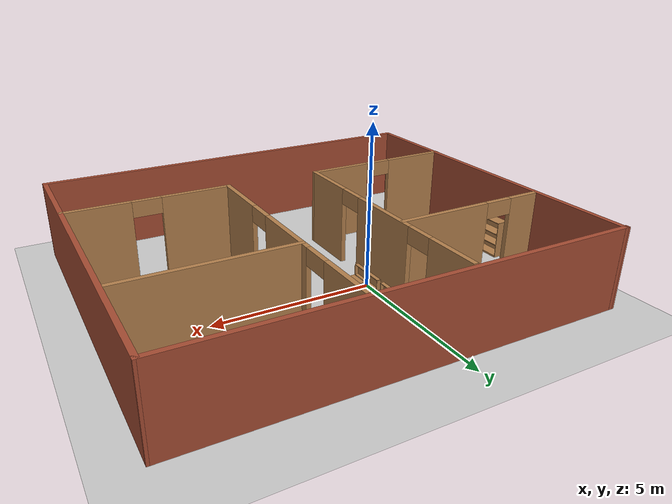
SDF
<sdf version="1.7">
 <world name="default">
  <plugin name="gazebo_ros_state" filename="libgazebo_ros_model_state.so">
   <ros><namespace>/</namespace></ros>
  </plugin>
  <light name="sun" type="directional">
   <pose>0 0 10 0 -0 0</pose>
   <diffuse>0.8 0.8 0.8 1</diffuse>
   <specular>0.2 0.2 0.2 1</specular>
   <attenuation>
    <range>1000</range>
    <constant>0.9</constant>
    <linear>0.01</linear>
    <quadratic>0.001</quadratic>
   </attenuation>
   <direction>-0.5 0.1 -0.9</direction>
   <spot><inner_angle>0</inner_angle><outer_angle>0</outer_angle><falloff>0</falloff></spot>
  </light>
  <model name="ground_plane">
   <static>1</static>
   <link name="link">
    <collision name="collision">
     <geometry><plane><normal>0 0 1</normal><size>100 100</size></plane></geometry>
     <surface><friction><ode><mu>100</mu><mu2>50</mu2></ode></friction></surface>
    </collision>
    <visual name="visual">
     <cast_shadows>0</cast_shadows>
     <geometry><plane><normal>0 0 1</normal><size>100 100</size></plane></geometry>
     <material>
      <script><uri>file://media/materials/scripts/gazebo.material</uri><name>Gazebo/Grey</name></script>
     </material>
    </visual>
   </link>
  </model>
  <gravity>0 0 -9.8</gravity>
  <magnetic_field>6e-06 2.3e-05 -4.2e-05</magnetic_field>
  <atmosphere type="adiabatic"/>
  <physics type="ode">
   <max_step_size>0.001</max_step_size>
   <real_time_factor>1</real_time_factor>
   <real_time_update_rate>1000</real_time_update_rate>
  </physics>
  <scene><ambient>0.4 0.4 0.4 1</ambient><background>0.7 0.7 0.7 1</background><shadows>1</shadows></scene>
  <audio><device>default</device></audio>
  <spherical_coordinates>
   <surface_model>EARTH_WGS84</surface_model>
   <latitude_deg>0</latitude_deg>
   <longitude_deg>0</longitude_deg>
   <elevation>0</elevation>
   <heading_deg>0</heading_deg>
  </spherical_coordinates>
  <model name="my_floor">
   <pose>1.28227 -1.19933 0 0 -0 0</pose>
   <link name="Wall_0">
    <collision name="Wall_0_Collision">
     <geometry><box><size>11.3221 0.15 2.5</size></box></geometry>
     <pose>0 0 1.25 0 -0 0</pose>
    </collision>
    <visual name="Wall_0_Visual">
     <pose>0 0 1.25 0 -0 0</pose>
     <geometry><box><size>11.3221 0.15 2.5</size></box></geometry>
     <material>
      <script><uri>file://media/materials/scripts/gazebo.material</uri><name>Gazebo/Bricks</name></script>
      <ambient>1 1 1 1</ambient>
     </material>
     <meta><layer>0</layer></meta>
    </visual>
    <pose>-6.55746 -6.5e-05 0 0 -0 -1.5708</pose>
   </link>
   <link name="Wall_1">
    <collision name="Wall_1_Collision">
     <geometry><box><size>13.3116 0.15 2.5</size></box></geometry>
     <pose>0 0 1.25 0 -0 0</pose>
    </collision>
    <visual name="Wall_1_Visual">
     <pose>0 0 1.25 0 -0 0</pose>
     <geometry><box><size>13.3116 0.15 2.5</size></box></geometry>
     <material>
      <script><uri>file://media/materials/scripts/gazebo.material</uri><name>Gazebo/Bricks</name></script>
      <ambient>1 1 1 1</ambient>
     </material>
     <meta><layer>0</layer></meta>
    </visual>
    <pose>0.023196 -5.53985 0 0 -0 0.00703</pose>
   </link>
   <link name="Wall_10">
    <pose>-1.53812 1.41526 0 0 -0 1.5708</pose>
    <visual name="Wall_10_Visual_0">
     <pose>-3.0194 0 1.25 0 -0 0</pose>
     <geometry><box><size>1.96119 0.15 2.5</size></box></geometry>
     <material>
      <script><uri>file://media/materials/scripts/gazebo.material</uri><name>Gazebo/Wood</name></script>
      <ambient>1 1 1 1</ambient>
     </material>
     <meta><layer>0</layer></meta>
    </visual>
    <collision name="Wall_10_Collision_0">
     <geometry><box><size>1.96119 0.15 2.5</size></box></geometry>
     <pose>-3.0194 0 1.25 0 -0 0</pose>
    </collision>
    <visual name="Wall_10_Visual_1">
     <pose>0.122856 0 1.25 0 -0 0</pose>
     <geometry><box><size>2.52333 0.15 2.5</size></box></geometry>
     <material>
      <script><uri>file://media/materials/scripts/gazebo.material</uri><name>Gazebo/Wood</name></script>
      <ambient>1 1 1 1</ambient>
     </material>
     <meta><layer>0</layer></meta>
    </visual>
    <collision name="Wall_10_Collision_1">
     <geometry><box><size>2.52333 0.15 2.5</size></box></geometry>
     <pose>0.122856 0 1.25 0 -0 0</pose>
    </collision>
    <visual name="Wall_10_Visual_2">
     <pose>3.14226 0 1.25 0 -0 0</pose>
     <geometry><box><size>1.71548 0.15 2.5</size></box></geometry>
     <material>
      <script><uri>file://media/materials/scripts/gazebo.material</uri><name>Gazebo/Wood</name></script>
      <ambient>1 1 1 1</ambient>
     </material>
     <meta><layer>0</layer></meta>
    </visual>
    <collision name="Wall_10_Collision_2">
     <geometry><box><size>1.71548 0.15 2.5</size></box></geometry>
     <pose>3.14226 0 1.25 0 -0 0</pose>
    </collision>
    <visual name="Wall_10_Visual_3">
     <pose>-1.58881 0 2.25 0 -0 0</pose>
     <geometry><box><size>0.9 0.15 0.5</size></box></geometry>
     <material>
      <script><uri>file://media/materials/scripts/gazebo.material</uri><name>Gazebo/Wood</name></script>
      <ambient>1 1 1 1</ambient>
     </material>
     <meta><layer>0</layer></meta>
    </visual>
    <collision name="Wall_10_Collision_3">
     <geometry><box><size>0.9 0.15 0.5</size></box></geometry>
     <pose>-1.58881 0 2.25 0 -0 0</pose>
    </collision>
    <visual name="Wall_10_Visual_4">
     <pose>1.83452 0 2.25 0 -0 0</pose>
     <geometry><box><size>0.9 0.15 0.5</size></box></geometry>
     <material>
      <script><uri>file://media/materials/scripts/gazebo.material</uri><name>Gazebo/Wood</name></script>
      <ambient>1 1 1 1</ambient>
     </material>
     <meta><layer>0</layer></meta>
    </visual>
    <collision name="Wall_10_Collision_4">
     <geometry><box><size>0.9 0.15 0.5</size></box></geometry>
     <pose>1.83452 0 2.25 0 -0 0</pose>
    </collision>
   </link>
   <link name="Wall_12">
    <pose>-4.05936 2.42865 0 0 -0 -3.13692</pose>
    <visual name="Wall_12_Visual_0">
     <pose>-1.02575 0 1.25 0 -0 0</pose>
     <geometry><box><size>3.04851 0.15 2.5</size></box></geometry>
     <material>
      <script><uri>file://media/materials/scripts/gazebo.material</uri><name>Gazebo/Wood</name></script>
      <ambient>1 1 1 1</ambient>
     </material>
     <meta><layer>0</layer></meta>
    </visual>
    <collision name="Wall_12_Collision_0">
     <geometry><box><size>3.04851 0.15 2.5</size></box></geometry>
     <pose>-1.02575 0 1.25 0 -0 0</pose>
    </collision>
    <visual name="Wall_12_Visual_1">
     <pose>1.97425 0 1.25 0 -0 0</pose>
     <geometry><box><size>1.15149 0.15 2.5</size></box></geometry>
     <material>
      <script><uri>file://media/materials/scripts/gazebo.material</uri><name>Gazebo/Wood</name></script>
      <ambient>1 1 1 1</ambient>
     </material>
     <meta><layer>0</layer></meta>
    </visual>
    <collision name="Wall_12_Collision_1">
     <geometry><box><size>1.15149 0.15 2.5</size></box></geometry>
     <pose>1.97425 0 1.25 0 -0 0</pose>
    </collision>
    <visual name="Wall_12_Visual_2">
     <pose>0.948507 0 2.25 0 -0 0</pose>
     <geometry><box><size>0.9 0.15 0.5</size></box></geometry>
     <material>
      <script><uri>file://media/materials/scripts/gazebo.material</uri><name>Gazebo/Wood</name></script>
      <ambient>1 1 1 1</ambient>
     </material>
     <meta><layer>0</layer></meta>
    </visual>
    <collision name="Wall_12_Collision_2">
     <geometry><box><size>0.9 0.15 0.5</size></box></geometry>
     <pose>0.948507 0 2.25 0 -0 0</pose>
    </collision>
   </link>
   <link name="Wall_16">
    <pose>4.04792 -2.59069 0 0 -0 3.13698</pose>
    <visual name="Wall_16_Visual_0">
     <pose>-1.56947 0 1.25 0 -0 0</pose>
     <geometry><box><size>2.03045 0.15 2.5</size></box></geometry>
     <material>
      <script><uri>file://media/materials/scripts/gazebo.material</uri><name>Gazebo/Wood</name></script>
      <ambient>1 1 1 1</ambient>
     </material>
     <meta><layer>0</layer></meta>
    </visual>
    <collision name="Wall_16_Collision_0">
     <geometry><box><size>2.03045 0.15 2.5</size></box></geometry>
     <pose>-1.56947 0 1.25 0 -0 0</pose>
    </collision>
    <visual name="Wall_16_Visual_1">
     <pose>1.46523 0 1.25 0 -0 0</pose>
     <geometry><box><size>2.23894 0.15 2.5</size></box></geometry>
     <material>
      <script><uri>file://media/materials/scripts/gazebo.material</uri><name>Gazebo/Wood</name></script>
      <ambient>1 1 1 1</ambient>
     </material>
     <meta><layer>0</layer></meta>
    </visual>
    <collision name="Wall_16_Collision_1">
     <geometry><box><size>2.23894 0.15 2.5</size></box></geometry>
     <pose>1.46523 0 1.25 0 -0 0</pose>
    </collision>
    <visual name="Wall_16_Visual_2">
     <pose>-0.104246 0 2.25 0 -0 0</pose>
     <geometry><box><size>0.9 0.15 0.5</size></box></geometry>
     <material>
      <script><uri>file://media/materials/scripts/gazebo.material</uri><name>Gazebo/Wood</name></script>
      <ambient>1 1 1 1</ambient>
     </material>
     <meta><layer>0</layer></meta>
    </visual>
    <collision name="Wall_16_Collision_2">
     <geometry><box><size>0.9 0.15 0.5</size></box></geometry>
     <pose>-0.104246 0 2.25 0 -0 0</pose>
    </collision>
   </link>
   <link name="Wall_19">
    <pose>1.51512 1.38777 0 0 -0 -1.56496</pose>
    <visual name="Wall_19_Visual_0">
     <pose>-3.13119 0 1.25 0 -0 0</pose>
     <geometry><box><size>1.82156 0.15 2.5</size></box></geometry>
     <material>
      <script><uri>file://media/materials/scripts/gazebo.material</uri><name>Gazebo/Wood</name></script>
      <ambient>1 1 1 1</ambient>
     </material>
     <meta><layer>0</layer></meta>
    </visual>
    <collision name="Wall_19_Collision_0">
     <geometry><box><size>1.82156 0.15 2.5</size></box></geometry>
     <pose>-3.13119 0 1.25 0 -0 0</pose>
    </collision>
    <visual name="Wall_19_Visual_1">
     <pose>-0.11673 0 1.25 0 -0 0</pose>
     <geometry><box><size>2.40735 0.15 2.5</size></box></geometry>
     <material>
      <script><uri>file://media/materials/scripts/gazebo.material</uri><name>Gazebo/Wood</name></script>
      <ambient>1 1 1 1</ambient>
     </material>
     <meta><layer>0</layer></meta>
    </visual>
    <collision name="Wall_19_Collision_1">
     <geometry><box><size>2.40735 0.15 2.5</size></box></geometry>
     <pose>-0.11673 0 1.25 0 -0 0</pose>
    </collision>
    <visual name="Wall_19_Visual_2">
     <pose>3.01446 0 1.25 0 -0 0</pose>
     <geometry><box><size>2.05502 0.15 2.5</size></box></geometry>
     <material>
      <script><uri>file://media/materials/scripts/gazebo.material</uri><name>Gazebo/Wood</name></script>
      <ambient>1 1 1 1</ambient>
     </material>
     <meta><layer>0</layer></meta>
    </visual>
    <collision name="Wall_19_Collision_2">
     <geometry><box><size>2.05502 0.15 2.5</size></box></geometry>
     <pose>3.01446 0 1.25 0 -0 0</pose>
    </collision>
    <visual name="Wall_19_Visual_3">
     <pose>-1.77041 0 2.25 0 -0 0</pose>
     <geometry><box><size>0.9 0.15 0.5</size></box></geometry>
     <material>
      <script><uri>file://media/materials/scripts/gazebo.material</uri><name>Gazebo/Wood</name></script>
      <ambient>1 1 1 1</ambient>
     </material>
     <meta><layer>0</layer></meta>
    </visual>
    <collision name="Wall_19_Collision_3">
     <geometry><box><size>0.9 0.15 0.5</size></box></geometry>
     <pose>-1.77041 0 2.25 0 -0 0</pose>
    </collision>
    <visual name="Wall_19_Visual_4">
     <pose>1.53695 0 2.25 0 -0 0</pose>
     <geometry><box><size>0.9 0.15 0.5</size></box></geometry>
     <material>
      <script><uri>file://media/materials/scripts/gazebo.material</uri><name>Gazebo/Wood</name></script>
      <ambient>1 1 1 1</ambient>
     </material>
     <meta><layer>0</layer></meta>
    </visual>
    <collision name="Wall_19_Collision_4">
     <geometry><box><size>0.9 0.15 0.5</size></box></geometry>
     <pose>1.53695 0 2.25 0 -0 0</pose>
    </collision>
   </link>
   <link name="Wall_2">
    <collision name="Wall_2_Collision">
     <geometry><box><size>11.1141 0.15 2.5</size></box></geometry>
     <pose>0 0 1.25 0 -0 0</pose>
    </collision>
    <visual name="Wall_2_Visual">
     <pose>0 0 1.25 0 -0 0</pose>
     <geometry><box><size>11.1141 0.15 2.5</size></box></geometry>
     <material>
      <script><uri>file://media/materials/scripts/gazebo.material</uri><name>Gazebo/Bricks</name></script>
      <ambient>1 1 1 1</ambient>
     </material>
     <meta><layer>0</layer></meta>
    </visual>
    <pose>6.58072 -0.011631 0 0 -0 1.57502</pose>
   </link>
   <link name="Wall_22">
    <collision name="Wall_22_Collision">
     <geometry><box><size>5.19253 0.15 2.5</size></box></geometry>
     <pose>0 0 1.25 0 -0 0</pose>
    </collision>
    <visual name="Wall_22_Visual">
     <pose>0 0 1.25 0 -0 0</pose>
     <geometry><box><size>5.19253 0.15 2.5</size></box></geometry>
     <material>
      <script><uri>file://media/materials/scripts/gazebo.material</uri><name>Gazebo/Wood</name></script>
      <ambient>1 1 1 1</ambient>
     </material>
     <meta><layer>0</layer></meta>
    </visual>
    <pose>4.03636 2.38239 0 0 -0 -0.004587</pose>
   </link>
   <link name="Wall_3">
    <collision name="Wall_3_Collision">
     <geometry><box><size>13.3118 0.15 2.5</size></box></geometry>
     <pose>0 0 1.25 0 -0 0</pose>
    </collision>
    <visual name="Wall_3_Visual">
     <pose>0 0 1.25 0 -0 0</pose>
     <geometry><box><size>13.3118 0.15 2.5</size></box></geometry>
     <material>
      <script><uri>file://media/materials/scripts/gazebo.material</uri><name>Gazebo/Bricks</name></script>
      <ambient>1 1 1 1</ambient>
     </material>
     <meta><layer>0</layer></meta>
    </visual>
    <pose>-0.023065 5.52815 0 0 -0 3.13281</pose>
   </link>
   <link name="Wall_9">
    <pose>-4.05936 -2.53287 0 0 -0 0.009174</pose>
    <visual name="Wall_9_Visual_0">
     <pose>-1.50041 0 1.25 0 -0 0</pose>
     <geometry><box><size>2.1925 0.15 2.5</size></box></geometry>
     <material>
      <script><uri>file://media/materials/scripts/gazebo.material</uri><name>Gazebo/Wood</name></script>
      <ambient>1 1 1 1</ambient>
     </material>
     <meta><layer>0</layer></meta>
    </visual>
    <collision name="Wall_9_Collision_0">
     <geometry><box><size>2.1925 0.15 2.5</size></box></geometry>
     <pose>-1.50041 0 1.25 0 -0 0</pose>
    </collision>
    <visual name="Wall_9_Visual_1">
     <pose>1.54625 0 1.25 0 -0 0</pose>
     <geometry><box><size>2.10083 0.15 2.5</size></box></geometry>
     <material>
      <script><uri>file://media/materials/scripts/gazebo.material</uri><name>Gazebo/Wood</name></script>
      <ambient>1 1 1 1</ambient>
     </material>
     <meta><layer>0</layer></meta>
    </visual>
    <collision name="Wall_9_Collision_1">
     <geometry><box><size>2.10083 0.15 2.5</size></box></geometry>
     <pose>1.54625 0 1.25 0 -0 0</pose>
    </collision>
    <visual name="Wall_9_Visual_2">
     <pose>0.045835 0 2.25 0 -0 0</pose>
     <geometry><box><size>0.9 0.15 0.5</size></box></geometry>
     <material>
      <script><uri>file://media/materials/scripts/gazebo.material</uri><name>Gazebo/Wood</name></script>
      <ambient>1 1 1 1</ambient>
     </material>
     <meta><layer>0</layer></meta>
    </visual>
    <collision name="Wall_9_Collision_2">
     <geometry><box><size>0.9 0.15 0.5</size></box></geometry>
     <pose>0.045835 0 2.25 0 -0 0</pose>
    </collision>
   </link>
   <static>1</static>
  </model>
  <model name="bookshelf">
   <static>1</static>
   <link name="link">
    <inertial><mass>1</mass></inertial>
    <collision name="back">
     <pose>0 0.005 0.6 0 -0 0</pose>
     <geometry><box><size>0.9 0.01 1.2</size></box></geometry>
    </collision>
    <visual name="visual1">
     <pose>0 0.005 0.6 0 -0 0</pose>
     <geometry><box><size>0.9 0.01 1.2</size></box></geometry>
     <material>
      <script><uri>file://media/materials/scripts/gazebo.material</uri><name>Gazebo/Wood</name></script>
     </material>
    </visual>
    <collision name="left_side">
     <pose>0.45 -0.195 0.6 0 -0 0</pose>
     <geometry><box><size>0.02 0.4 1.2</size></box></geometry>
    </collision>
    <visual name="visual2">
     <pose>0.45 -0.195 0.6 0 -0 0</pose>
     <geometry><box><size>0.02 0.4 1.2</size></box></geometry>
     <material>
      <script><uri>file://media/materials/scripts/gazebo.material</uri><name>Gazebo/Wood</name></script>
     </material>
    </visual>
    <collision name="right_side">
     <pose>-0.45 -0.195 0.6 0 -0 0</pose>
     <geometry><box><size>0.02 0.4 1.2</size></box></geometry>
    </collision>
    <visual name="visual3">
     <pose>-0.45 -0.195 0.6 0 -0 0</pose>
     <geometry><box><size>0.02 0.4 1.2</size></box></geometry>
     <material>
      <script><uri>file://media/materials/scripts/gazebo.material</uri><name>Gazebo/Wood</name></script>
     </material>
    </visual>
    <collision name="bottom">
     <pose>0 -0.195 0.03 0 -0 0</pose>
     <geometry><box><size>0.88 0.4 0.06</size></box></geometry>
    </collision>
    <visual name="visual4">
     <pose>0 -0.195 0.03 0 -0 0</pose>
     <geometry><box><size>0.88 0.4 0.06</size></box></geometry>
     <material>
      <script><uri>file://media/materials/scripts/gazebo.material</uri><name>Gazebo/Wood</name></script>
     </material>
    </visual>
    <collision name="top">
     <pose>0 -0.195 1.19 0 -0 0</pose>
     <geometry><box><size>0.88 0.4 0.02</size></box></geometry>
    </collision>
    <visual name="visual5">
     <pose>0 -0.195 1.19 0 -0 0</pose>
     <geometry><box><size>0.88 0.4 0.02</size></box></geometry>
     <material>
      <script><uri>file://media/materials/scripts/gazebo.material</uri><name>Gazebo/Wood</name></script>
     </material>
    </visual>
    <collision name="low_shelf">
     <pose>0 -0.195 0.43 0 -0 0</pose>
     <geometry><box><size>0.88 0.4 0.02</size></box></geometry>
    </collision>
    <visual name="visual6">
     <pose>0 -0.195 0.43 0 -0 0</pose>
     <geometry><box><size>0.88 0.4 0.02</size></box></geometry>
     <material>
      <script><uri>file://media/materials/scripts/gazebo.material</uri><name>Gazebo/Wood</name></script>
     </material>
    </visual>
    <collision name="high_shelf">
     <pose>0 -0.195 0.8 0 -0 0</pose>
     <geometry><box><size>0.88 0.4 0.02</size></box></geometry>
    </collision>
    <visual name="visual7">
     <pose>0 -0.195 0.8 0 -0 0</pose>
     <geometry><box><size>0.88 0.4 0.02</size></box></geometry>
     <material>
      <script><uri>file://media/materials/scripts/gazebo.material</uri><name>Gazebo/Wood</name></script>
     </material>
    </visual>
   </link>
   <pose>-2.5611 1.1369 0 0 -0 0</pose>
  </model>
  <model name="bookshelf_0">
   <static>1</static>
   <link name="link">
    <inertial><mass>1</mass></inertial>
    <collision name="back">
     <pose>0 0.005 0.6 0 -0 0</pose>
     <geometry><box><size>0.9 0.01 1.2</size></box></geometry>
    </collision>
    <visual name="visual1">
     <pose>0 0.005 0.6 0 -0 0</pose>
     <geometry><box><size>0.9 0.01 1.2</size></box></geometry>
     <material>
      <script><uri>file://media/materials/scripts/gazebo.material</uri><name>Gazebo/Wood</name></script>
     </material>
    </visual>
    <collision name="left_side">
     <pose>0.45 -0.195 0.6 0 -0 0</pose>
     <geometry><box><size>0.02 0.4 1.2</size></box></geometry>
    </collision>
    <visual name="visual2">
     <pose>0.45 -0.195 0.6 0 -0 0</pose>
     <geometry><box><size>0.02 0.4 1.2</size></box></geometry>
     <material>
      <script><uri>file://media/materials/scripts/gazebo.material</uri><name>Gazebo/Wood</name></script>
     </material>
    </visual>
    <collision name="right_side">
     <pose>-0.45 -0.195 0.6 0 -0 0</pose>
     <geometry><box><size>0.02 0.4 1.2</size></box></geometry>
    </collision>
    <visual name="visual3">
     <pose>-0.45 -0.195 0.6 0 -0 0</pose>
     <geometry><box><size>0.02 0.4 1.2</size></box></geometry>
     <material>
      <script><uri>file://media/materials/scripts/gazebo.material</uri><name>Gazebo/Wood</name></script>
     </material>
    </visual>
    <collision name="bottom">
     <pose>0 -0.195 0.03 0 -0 0</pose>
     <geometry><box><size>0.88 0.4 0.06</size></box></geometry>
    </collision>
    <visual name="visual4">
     <pose>0 -0.195 0.03 0 -0 0</pose>
     <geometry><box><size>0.88 0.4 0.06</size></box></geometry>
     <material>
      <script><uri>file://media/materials/scripts/gazebo.material</uri><name>Gazebo/Wood</name></script>
     </material>
    </visual>
    <collision name="top">
     <pose>0 -0.195 1.19 0 -0 0</pose>
     <geometry><box><size>0.88 0.4 0.02</size></box></geometry>
    </collision>
    <visual name="visual5">
     <pose>0 -0.195 1.19 0 -0 0</pose>
     <geometry><box><size>0.88 0.4 0.02</size></box></geometry>
     <material>
      <script><uri>file://media/materials/scripts/gazebo.material</uri><name>Gazebo/Wood</name></script>
     </material>
    </visual>
    <collision name="low_shelf">
     <pose>0 -0.195 0.43 0 -0 0</pose>
     <geometry><box><size>0.88 0.4 0.02</size></box></geometry>
    </collision>
    <visual name="visual6">
     <pose>0 -0.195 0.43 0 -0 0</pose>
     <geometry><box><size>0.88 0.4 0.02</size></box></geometry>
     <material>
      <script><uri>file://media/materials/scripts/gazebo.material</uri><name>Gazebo/Wood</name></script>
     </material>
    </visual>
    <collision name="high_shelf">
     <pose>0 -0.195 0.8 0 -0 0</pose>
     <geometry><box><size>0.88 0.4 0.02</size></box></geometry>
    </collision>
    <visual name="visual7">
     <pose>0 -0.195 0.8 0 -0 0</pose>
     <geometry><box><size>0.88 0.4 0.02</size></box></geometry>
     <material>
      <script><uri>file://media/materials/scripts/gazebo.material</uri><name>Gazebo/Wood</name></script>
     </material>
    </visual>
   </link>
   <pose>-5.17905 -0.142839 0 0 -0 1.58158</pose>
  </model>
  <model name="bookshelf_1">
   <static>1</static>
   <link name="link">
    <inertial><mass>1</mass></inertial>
    <collision name="back">
     <pose>0 0.005 0.6 0 -0 0</pose>
     <geometry><box><size>0.9 0.01 1.2</size></box></geometry>
    </collision>
    <visual name="visual1">
     <pose>0 0.005 0.6 0 -0 0</pose>
     <geometry><box><size>0.9 0.01 1.2</size></box></geometry>
     <material>
      <script><uri>file://media/materials/scripts/gazebo.material</uri><name>Gazebo/Wood</name></script>
     </material>
    </visual>
    <collision name="left_side">
     <pose>0.45 -0.195 0.6 0 -0 0</pose>
     <geometry><box><size>0.02 0.4 1.2</size></box></geometry>
    </collision>
    <visual name="visual2">
     <pose>0.45 -0.195 0.6 0 -0 0</pose>
     <geometry><box><size>0.02 0.4 1.2</size></box></geometry>
     <material>
      <script><uri>file://media/materials/scripts/gazebo.material</uri><name>Gazebo/Wood</name></script>
     </material>
    </visual>
    <collision name="right_side">
     <pose>-0.45 -0.195 0.6 0 -0 0</pose>
     <geometry><box><size>0.02 0.4 1.2</size></box></geometry>
    </collision>
    <visual name="visual3">
     <pose>-0.45 -0.195 0.6 0 -0 0</pose>
     <geometry><box><size>0.02 0.4 1.2</size></box></geometry>
     <material>
      <script><uri>file://media/materials/scripts/gazebo.material</uri><name>Gazebo/Wood</name></script>
     </material>
    </visual>
    <collision name="bottom">
     <pose>0 -0.195 0.03 0 -0 0</pose>
     <geometry><box><size>0.88 0.4 0.06</size></box></geometry>
    </collision>
    <visual name="visual4">
     <pose>0 -0.195 0.03 0 -0 0</pose>
     <geometry><box><size>0.88 0.4 0.06</size></box></geometry>
     <material>
      <script><uri>file://media/materials/scripts/gazebo.material</uri><name>Gazebo/Wood</name></script>
     </material>
    </visual>
    <collision name="top">
     <pose>0 -0.195 1.19 0 -0 0</pose>
     <geometry><box><size>0.88 0.4 0.02</size></box></geometry>
    </collision>
    <visual name="visual5">
     <pose>0 -0.195 1.19 0 -0 0</pose>
     <geometry><box><size>0.88 0.4 0.02</size></box></geometry>
     <material>
      <script><uri>file://media/materials/scripts/gazebo.material</uri><name>Gazebo/Wood</name></script>
     </material>
    </visual>
    <collision name="low_shelf">
     <pose>0 -0.195 0.43 0 -0 0</pose>
     <geometry><box><size>0.88 0.4 0.02</size></box></geometry>
    </collision>
    <visual name="visual6">
     <pose>0 -0.195 0.43 0 -0 0</pose>
     <geometry><box><size>0.88 0.4 0.02</size></box></geometry>
     <material>
      <script><uri>file://media/materials/scripts/gazebo.material</uri><name>Gazebo/Wood</name></script>
     </material>
    </visual>
    <collision name="high_shelf">
     <pose>0 -0.195 0.8 0 -0 0</pose>
     <geometry><box><size>0.88 0.4 0.02</size></box></geometry>
    </collision>
    <visual name="visual7">
     <pose>0 -0.195 0.8 0 -0 0</pose>
     <geometry><box><size>0.88 0.4 0.02</size></box></geometry>
     <material>
      <script><uri>file://media/materials/scripts/gazebo.material</uri><name>Gazebo/Wood</name></script>
     </material>
    </visual>
   </link>
   <pose>3.81136 1.09262 0 0 -0 0</pose>
  </model>
  <model name="wooden_case">
   <link name="base">
    <pose>0 0 0.024 0 -0 0</pose>
    <inertial>
     <pose>-0.022184 0 0.171592 0 -0 0</pose>
     <mass>3.96264</mass>
     <inertia>
      <ixx>0.213536</ixx>
      <ixy>0</ixy>
      <ixz>0.000779377</ixz>
      <iyy>0.0708943</iyy>
      <iyz>0</iyz>
      <izz>0.154604</izz>
     </inertia>
    </inertial>
    <collision name="collision_back">
     <pose>-0.053975 0 0.1778 0 -0 0</pose>
     <geometry><box><size>0.01905 0.5461 0.3175</size></box></geometry>
     <surface>
      <contact>
       <poissons_ratio>0.347</poissons_ratio>
       <elastic_modulus>8.8e+09</elastic_modulus>
       <ode><kp>100000</kp><kd>100</kd><max_vel>100</max_vel><min_depth>0.001</min_depth></ode>
      </contact>
      <friction>
       <torsional>
        <coefficient>1</coefficient>
        <use_patch_radius>0</use_patch_radius>
        <surface_radius>0.01</surface_radius>
       </torsional>
      </friction>
     </surface>
    </collision>
    <visual name="visual_back">
     <pose>-0.053975 0 0.1778 0 -0 0</pose>
     <geometry><box><size>0.01905 0.5461 0.3175</size></box></geometry>
     <material>
      <script><uri>file://media/materials/scripts/gazebo.material</uri><name>Gazebo/Wood</name></script>
     </material>
    </visual>
    <collision name="collision_bottom">
     <pose>0 0 0.009525 0 -0 0</pose>
     <geometry><box><size>0.127 0.5842 0.01905</size></box></geometry>
     <surface>
      <contact>
       <poissons_ratio>0.347</poissons_ratio>
       <elastic_modulus>8.8e+09</elastic_modulus>
       <ode><kp>100000</kp><kd>100</kd><max_vel>100</max_vel><min_depth>0.001</min_depth></ode>
      </contact>
      <friction>
       <torsional>
        <coefficient>1</coefficient>
        <use_patch_radius>0</use_patch_radius>
        <surface_radius>0.01</surface_radius>
       </torsional>
      </friction>
     </surface>
    </collision>
    <visual name="visual_bottom">
     <pose>0 0 0.009525 0 -0 0</pose>
     <geometry><box><size>0.127 0.5842 0.01905</size></box></geometry>
     <material>
      <script><uri>file://media/materials/scripts/gazebo.material</uri><name>Gazebo/Wood</name></script>
     </material>
    </visual>
    <collision name="collision_top">
     <pose>0 0 0.346075 0 -0 0</pose>
     <geometry><box><size>0.127 0.5842 0.01905</size></box></geometry>
     <surface>
      <contact>
       <poissons_ratio>0.347</poissons_ratio>
       <elastic_modulus>8.8e+09</elastic_modulus>
       <ode><kp>100000</kp><kd>100</kd><max_vel>100</max_vel><min_depth>0.001</min_depth></ode>
      </contact>
      <friction>
       <torsional>
        <coefficient>1</coefficient>
        <use_patch_radius>0</use_patch_radius>
        <surface_radius>0.01</surface_radius>
       </torsional>
      </friction>
     </surface>
    </collision>
    <visual name="visual_top">
     <pose>0 0 0.346075 0 -0 0</pose>
     <geometry><box><size>0.127 0.5842 0.01905</size></box></geometry>
     <material>
      <script><uri>file://media/materials/scripts/gazebo.material</uri><name>Gazebo/Wood</name></script>
     </material>
    </visual>
    <collision name="collision_left">
     <pose>0 -0.282575 0.1778 0 -0 0</pose>
     <geometry><box><size>0.127 0.01905 0.3175</size></box></geometry>
     <surface>
      <contact>
       <poissons_ratio>0.347</poissons_ratio>
       <elastic_modulus>8.8e+09</elastic_modulus>
       <ode><kp>100000</kp><kd>100</kd><max_vel>100</max_vel><min_depth>0.001</min_depth></ode>
      </contact>
      <friction>
       <torsional>
        <coefficient>1</coefficient>
        <use_patch_radius>0</use_patch_radius>
        <surface_radius>0.01</surface_radius>
       </torsional>
      </friction>
     </surface>
    </collision>
    <visual name="visual_left">
     <pose>0 -0.282575 0.1778 0 -0 0</pose>
     <geometry><box><size>0.127 0.01905 0.3175</size></box></geometry>
     <material>
      <script><uri>file://media/materials/scripts/gazebo.material</uri><name>Gazebo/Wood</name></script>
     </material>
    </visual>
    <collision name="collision_right">
     <pose>0 0.282575 0.1778 0 -0 0</pose>
     <geometry><box><size>0.127 0.01905 0.3175</size></box></geometry>
     <surface>
      <contact>
       <poissons_ratio>0.347</poissons_ratio>
       <elastic_modulus>8.8e+09</elastic_modulus>
       <ode><kp>100000</kp><kd>100</kd><max_vel>100</max_vel><min_depth>0.001</min_depth></ode>
      </contact>
      <friction>
       <torsional>
        <coefficient>1</coefficient>
        <use_patch_radius>0</use_patch_radius>
        <surface_radius>0.01</surface_radius>
       </torsional>
      </friction>
     </surface>
    </collision>
    <visual name="visual_right">
     <pose>0 0.282575 0.1778 0 -0 0</pose>
     <geometry><box><size>0.127 0.01905 0.3175</size></box></geometry>
     <material>
      <script><uri>file://media/materials/scripts/gazebo.material</uri><name>Gazebo/Wood</name></script>
     </material>
    </visual>
    <collision name="collision_block_left">
     <pose>0.0095 -0.2151 -0.012 0 -0 0</pose>
     <geometry><box><size>0.108 0.05 0.024</size></box></geometry>
     <surface>
      <contact>
       <poissons_ratio>0.347</poissons_ratio>
       <elastic_modulus>8.8e+09</elastic_modulus>
       <ode><kp>100000</kp><kd>100</kd><max_vel>100</max_vel><min_depth>0.001</min_depth></ode>
      </contact>
      <friction>
       <torsional>
        <coefficient>1</coefficient>
        <use_patch_radius>0</use_patch_radius>
        <surface_radius>0.01</surface_radius>
       </torsional>
      </friction>
     </surface>
    </collision>
    <visual name="visual_block_left">
     <pose>0.0095 -0.2151 -0.012 0 -0 0</pose>
     <geometry><box><size>0.108 0.05 0.024</size></box></geometry>
     <material>
      <script><uri>file://media/materials/scripts/gazebo.material</uri><name>Gazebo/Wood</name></script>
     </material>
    </visual>
    <collision name="collision_block_right">
     <pose>0.0095 0.2151 -0.012 0 -0 0</pose>
     <geometry><box><size>0.108 0.05 0.024</size></box></geometry>
     <surface>
      <contact>
       <poissons_ratio>0.347</poissons_ratio>
       <elastic_modulus>8.8e+09</elastic_modulus>
       <ode><kp>100000</kp><kd>100</kd><max_vel>100</max_vel><min_depth>0.001</min_depth></ode>
      </contact>
      <friction>
       <torsional>
        <coefficient>1</coefficient>
        <use_patch_radius>0</use_patch_radius>
        <surface_radius>0.01</surface_radius>
       </torsional>
      </friction>
     </surface>
    </collision>
    <visual name="visual_block_right">
     <pose>0.0095 0.2151 -0.012 0 -0 0</pose>
     <geometry><box><size>0.108 0.05 0.024</size></box></geometry>
     <material>
      <script><uri>file://media/materials/scripts/gazebo.material</uri><name>Gazebo/Wood</name></script>
     </material>
    </visual>
   </link>
   <link name="lid">
    <pose>0.243775 0 0.009525 0 -0 0</pose>
    <inertial>
     <mass>1.97874</mass>
     <inertia>
      <ixx>0.0563367</ixx>
      <ixy>0</ixy>
      <ixz>0</ixz>
      <iyy>0.020911</iyy>
      <iyz>0</iyz>
      <izz>0.0771281</izz>
     </inertia>
    </inertial>
    <collision name="collision">
     <geometry><box><size>0.3556 0.5842 0.01905</size></box></geometry>
     <surface>
      <contact>
       <poissons_ratio>0.347</poissons_ratio>
       <elastic_modulus>8.8e+09</elastic_modulus>
       <ode><kp>100000</kp><kd>100</kd><max_vel>100</max_vel><min_depth>0.001</min_depth></ode>
      </contact>
      <friction>
       <torsional>
        <coefficient>1</coefficient>
        <use_patch_radius>0</use_patch_radius>
        <surface_radius>0.01</surface_radius>
       </torsional>
      </friction>
     </surface>
    </collision>
    <visual name="visual">
     <geometry><box><size>0.3556 0.5842 0.01905</size></box></geometry>
     <material>
      <script><uri>file://media/materials/scripts/gazebo.material</uri><name>Gazebo/Wood</name></script>
     </material>
    </visual>
    <visual name="tee_nut_1">
     <pose>0.122 -0.216 0 0 -0 0</pose>
     <geometry><cylinder><radius>0.00635</radius><length>0.0192405</length></cylinder></geometry>
     <material>
      <script><uri>file://media/materials/scripts/gazebo.material</uri><name>Gazebo/Grey</name></script>
     </material>
    </visual>
    <visual name="tee_nut_2">
     <pose>0.122 -0.088 0 0 -0 0</pose>
     <geometry><cylinder><radius>0.00635</radius><length>0.0192405</length></cylinder></geometry>
     <material>
      <script><uri>file://media/materials/scripts/gazebo.material</uri><name>Gazebo/Grey</name></script>
     </material>
    </visual>
    <visual name="tee_nut_3">
     <pose>0.122 0.088 0 0 -0 0</pose>
     <geometry><cylinder><radius>0.00635</radius><length>0.0192405</length></cylinder></geometry>
     <material>
      <script><uri>file://media/materials/scripts/gazebo.material</uri><name>Gazebo/Grey</name></script>
     </material>
    </visual>
    <visual name="tee_nut_4">
     <pose>0.122 0.216 0 0 -0 0</pose>
     <geometry><cylinder><radius>0.00635</radius><length>0.0192405</length></cylinder></geometry>
     <material>
      <script><uri>file://media/materials/scripts/gazebo.material</uri><name>Gazebo/Grey</name></script>
     </material>
    </visual>
   </link>
   <joint name="lid_hinge" type="revolute">
    <pose>-0.1778 0 0.01905 0 -0 0</pose>
    <parent>base</parent>
    <child>lid</child>
    <axis>
     <xyz>0 1 0</xyz>
     <limit><upper>0.523599</upper><lower>-1.5708</lower></limit>
     <dynamics><spring_reference>0</spring_reference><spring_stiffness>0</spring_stiffness></dynamics>
    </axis>
   </joint>
   <pose>-0.118204 -0.485288 -0.001056 -0 -0.000382 1e-06</pose>
  </model>
  <model name="wooden_case_0">
   <link name="base">
    <pose>0 0 0.024 0 -0 0</pose>
    <inertial>
     <pose>-0.022184 0 0.171592 0 -0 0</pose>
     <mass>3.96264</mass>
     <inertia>
      <ixx>0.213536</ixx>
      <ixy>0</ixy>
      <ixz>0.000779377</ixz>
      <iyy>0.0708943</iyy>
      <iyz>0</iyz>
      <izz>0.154604</izz>
     </inertia>
    </inertial>
    <collision name="collision_back">
     <pose>-0.053975 0 0.1778 0 -0 0</pose>
     <geometry><box><size>0.01905 0.5461 0.3175</size></box></geometry>
     <surface>
      <contact>
       <poissons_ratio>0.347</poissons_ratio>
       <elastic_modulus>8.8e+09</elastic_modulus>
       <ode><kp>100000</kp><kd>100</kd><max_vel>100</max_vel><min_depth>0.001</min_depth></ode>
      </contact>
      <friction>
       <torsional>
        <coefficient>1</coefficient>
        <use_patch_radius>0</use_patch_radius>
        <surface_radius>0.01</surface_radius>
       </torsional>
      </friction>
     </surface>
    </collision>
    <visual name="visual_back">
     <pose>-0.053975 0 0.1778 0 -0 0</pose>
     <geometry><box><size>0.01905 0.5461 0.3175</size></box></geometry>
     <material>
      <script><uri>file://media/materials/scripts/gazebo.material</uri><name>Gazebo/Wood</name></script>
     </material>
    </visual>
    <collision name="collision_bottom">
     <pose>0 0 0.009525 0 -0 0</pose>
     <geometry><box><size>0.127 0.5842 0.01905</size></box></geometry>
     <surface>
      <contact>
       <poissons_ratio>0.347</poissons_ratio>
       <elastic_modulus>8.8e+09</elastic_modulus>
       <ode><kp>100000</kp><kd>100</kd><max_vel>100</max_vel><min_depth>0.001</min_depth></ode>
      </contact>
      <friction>
       <torsional>
        <coefficient>1</coefficient>
        <use_patch_radius>0</use_patch_radius>
        <surface_radius>0.01</surface_radius>
       </torsional>
      </friction>
     </surface>
    </collision>
    <visual name="visual_bottom">
     <pose>0 0 0.009525 0 -0 0</pose>
     <geometry><box><size>0.127 0.5842 0.01905</size></box></geometry>
     <material>
      <script><uri>file://media/materials/scripts/gazebo.material</uri><name>Gazebo/Wood</name></script>
     </material>
    </visual>
    <collision name="collision_top">
     <pose>0 0 0.346075 0 -0 0</pose>
     <geometry><box><size>0.127 0.5842 0.01905</size></box></geometry>
     <surface>
      <contact>
       <poissons_ratio>0.347</poissons_ratio>
       <elastic_modulus>8.8e+09</elastic_modulus>
       <ode><kp>100000</kp><kd>100</kd><max_vel>100</max_vel><min_depth>0.001</min_depth></ode>
      </contact>
      <friction>
       <torsional>
        <coefficient>1</coefficient>
        <use_patch_radius>0</use_patch_radius>
        <surface_radius>0.01</surface_radius>
       </torsional>
      </friction>
     </surface>
    </collision>
    <visual name="visual_top">
     <pose>0 0 0.346075 0 -0 0</pose>
     <geometry><box><size>0.127 0.5842 0.01905</size></box></geometry>
     <material>
      <script><uri>file://media/materials/scripts/gazebo.material</uri><name>Gazebo/Wood</name></script>
     </material>
    </visual>
    <collision name="collision_left">
     <pose>0 -0.282575 0.1778 0 -0 0</pose>
     <geometry><box><size>0.127 0.01905 0.3175</size></box></geometry>
     <surface>
      <contact>
       <poissons_ratio>0.347</poissons_ratio>
       <elastic_modulus>8.8e+09</elastic_modulus>
       <ode><kp>100000</kp><kd>100</kd><max_vel>100</max_vel><min_depth>0.001</min_depth></ode>
      </contact>
      <friction>
       <torsional>
        <coefficient>1</coefficient>
        <use_patch_radius>0</use_patch_radius>
        <surface_radius>0.01</surface_radius>
       </torsional>
      </friction>
     </surface>
    </collision>
    <visual name="visual_left">
     <pose>0 -0.282575 0.1778 0 -0 0</pose>
     <geometry><box><size>0.127 0.01905 0.3175</size></box></geometry>
     <material>
      <script><uri>file://media/materials/scripts/gazebo.material</uri><name>Gazebo/Wood</name></script>
     </material>
    </visual>
    <collision name="collision_right">
     <pose>0 0.282575 0.1778 0 -0 0</pose>
     <geometry><box><size>0.127 0.01905 0.3175</size></box></geometry>
     <surface>
      <contact>
       <poissons_ratio>0.347</poissons_ratio>
       <elastic_modulus>8.8e+09</elastic_modulus>
       <ode><kp>100000</kp><kd>100</kd><max_vel>100</max_vel><min_depth>0.001</min_depth></ode>
      </contact>
      <friction>
       <torsional>
        <coefficient>1</coefficient>
        <use_patch_radius>0</use_patch_radius>
        <surface_radius>0.01</surface_radius>
       </torsional>
      </friction>
     </surface>
    </collision>
    <visual name="visual_right">
     <pose>0 0.282575 0.1778 0 -0 0</pose>
     <geometry><box><size>0.127 0.01905 0.3175</size></box></geometry>
     <material>
      <script><uri>file://media/materials/scripts/gazebo.material</uri><name>Gazebo/Wood</name></script>
     </material>
    </visual>
    <collision name="collision_block_left">
     <pose>0.0095 -0.2151 -0.012 0 -0 0</pose>
     <geometry><box><size>0.108 0.05 0.024</size></box></geometry>
     <surface>
      <contact>
       <poissons_ratio>0.347</poissons_ratio>
       <elastic_modulus>8.8e+09</elastic_modulus>
       <ode><kp>100000</kp><kd>100</kd><max_vel>100</max_vel><min_depth>0.001</min_depth></ode>
      </contact>
      <friction>
       <torsional>
        <coefficient>1</coefficient>
        <use_patch_radius>0</use_patch_radius>
        <surface_radius>0.01</surface_radius>
       </torsional>
      </friction>
     </surface>
    </collision>
    <visual name="visual_block_left">
     <pose>0.0095 -0.2151 -0.012 0 -0 0</pose>
     <geometry><box><size>0.108 0.05 0.024</size></box></geometry>
     <material>
      <script><uri>file://media/materials/scripts/gazebo.material</uri><name>Gazebo/Wood</name></script>
     </material>
    </visual>
    <collision name="collision_block_right">
     <pose>0.0095 0.2151 -0.012 0 -0 0</pose>
     <geometry><box><size>0.108 0.05 0.024</size></box></geometry>
     <surface>
      <contact>
       <poissons_ratio>0.347</poissons_ratio>
       <elastic_modulus>8.8e+09</elastic_modulus>
       <ode><kp>100000</kp><kd>100</kd><max_vel>100</max_vel><min_depth>0.001</min_depth></ode>
      </contact>
      <friction>
       <torsional>
        <coefficient>1</coefficient>
        <use_patch_radius>0</use_patch_radius>
        <surface_radius>0.01</surface_radius>
       </torsional>
      </friction>
     </surface>
    </collision>
    <visual name="visual_block_right">
     <pose>0.0095 0.2151 -0.012 0 -0 0</pose>
     <geometry><box><size>0.108 0.05 0.024</size></box></geometry>
     <material>
      <script><uri>file://media/materials/scripts/gazebo.material</uri><name>Gazebo/Wood</name></script>
     </material>
    </visual>
   </link>
   <link name="lid">
    <pose>0.243775 0 0.009525 0 -0 0</pose>
    <inertial>
     <mass>1.97874</mass>
     <inertia>
      <ixx>0.0563367</ixx>
      <ixy>0</ixy>
      <ixz>0</ixz>
      <iyy>0.020911</iyy>
      <iyz>0</iyz>
      <izz>0.0771281</izz>
     </inertia>
    </inertial>
    <collision name="collision">
     <geometry><box><size>0.3556 0.5842 0.01905</size></box></geometry>
     <surface>
      <contact>
       <poissons_ratio>0.347</poissons_ratio>
       <elastic_modulus>8.8e+09</elastic_modulus>
       <ode><kp>100000</kp><kd>100</kd><max_vel>100</max_vel><min_depth>0.001</min_depth></ode>
      </contact>
      <friction>
       <torsional>
        <coefficient>1</coefficient>
        <use_patch_radius>0</use_patch_radius>
        <surface_radius>0.01</surface_radius>
       </torsional>
      </friction>
     </surface>
    </collision>
    <visual name="visual">
     <geometry><box><size>0.3556 0.5842 0.01905</size></box></geometry>
     <material>
      <script><uri>file://media/materials/scripts/gazebo.material</uri><name>Gazebo/Wood</name></script>
     </material>
    </visual>
    <visual name="tee_nut_1">
     <pose>0.122 -0.216 0 0 -0 0</pose>
     <geometry><cylinder><radius>0.00635</radius><length>0.0192405</length></cylinder></geometry>
     <material>
      <script><uri>file://media/materials/scripts/gazebo.material</uri><name>Gazebo/Grey</name></script>
     </material>
    </visual>
    <visual name="tee_nut_2">
     <pose>0.122 -0.088 0 0 -0 0</pose>
     <geometry><cylinder><radius>0.00635</radius><length>0.0192405</length></cylinder></geometry>
     <material>
      <script><uri>file://media/materials/scripts/gazebo.material</uri><name>Gazebo/Grey</name></script>
     </material>
    </visual>
    <visual name="tee_nut_3">
     <pose>0.122 0.088 0 0 -0 0</pose>
     <geometry><cylinder><radius>0.00635</radius><length>0.0192405</length></cylinder></geometry>
     <material>
      <script><uri>file://media/materials/scripts/gazebo.material</uri><name>Gazebo/Grey</name></script>
     </material>
    </visual>
    <visual name="tee_nut_4">
     <pose>0.122 0.216 0 0 -0 0</pose>
     <geometry><cylinder><radius>0.00635</radius><length>0.0192405</length></cylinder></geometry>
     <material>
      <script><uri>file://media/materials/scripts/gazebo.material</uri><name>Gazebo/Grey</name></script>
     </material>
    </visual>
   </link>
   <joint name="lid_hinge" type="revolute">
    <pose>-0.1778 0 0.01905 0 -0 0</pose>
    <parent>base</parent>
    <child>lid</child>
    <axis>
     <xyz>0 1 0</xyz>
     <limit><upper>0.523599</upper><lower>-1.5708</lower></limit>
     <dynamics><spring_reference>0</spring_reference><spring_stiffness>0</spring_stiffness></dynamics>
    </axis>
   </joint>
   <pose>-0.112696 0.171223 -0.001057 0 -0.000429 0</pose>
  </model>
  <model name="wooden_case_1">
   <link name="base">
    <pose>0 0 0.024 0 -0 0</pose>
    <inertial>
     <pose>-0.022184 0 0.171592 0 -0 0</pose>
     <mass>3.96264</mass>
     <inertia>
      <ixx>0.213536</ixx>
      <ixy>0</ixy>
      <ixz>0.000779377</ixz>
      <iyy>0.0708943</iyy>
      <iyz>0</iyz>
      <izz>0.154604</izz>
     </inertia>
    </inertial>
    <collision name="collision_back">
     <pose>-0.053975 0 0.1778 0 -0 0</pose>
     <geometry><box><size>0.01905 0.5461 0.3175</size></box></geometry>
     <surface>
      <contact>
       <poissons_ratio>0.347</poissons_ratio>
       <elastic_modulus>8.8e+09</elastic_modulus>
       <ode><kp>100000</kp><kd>100</kd><max_vel>100</max_vel><min_depth>0.001</min_depth></ode>
      </contact>
      <friction>
       <torsional>
        <coefficient>1</coefficient>
        <use_patch_radius>0</use_patch_radius>
        <surface_radius>0.01</surface_radius>
       </torsional>
      </friction>
     </surface>
    </collision>
    <visual name="visual_back">
     <pose>-0.053975 0 0.1778 0 -0 0</pose>
     <geometry><box><size>0.01905 0.5461 0.3175</size></box></geometry>
     <material>
      <script><uri>file://media/materials/scripts/gazebo.material</uri><name>Gazebo/Wood</name></script>
     </material>
    </visual>
    <collision name="collision_bottom">
     <pose>0 0 0.009525 0 -0 0</pose>
     <geometry><box><size>0.127 0.5842 0.01905</size></box></geometry>
     <surface>
      <contact>
       <poissons_ratio>0.347</poissons_ratio>
       <elastic_modulus>8.8e+09</elastic_modulus>
       <ode><kp>100000</kp><kd>100</kd><max_vel>100</max_vel><min_depth>0.001</min_depth></ode>
      </contact>
      <friction>
       <torsional>
        <coefficient>1</coefficient>
        <use_patch_radius>0</use_patch_radius>
        <surface_radius>0.01</surface_radius>
       </torsional>
      </friction>
     </surface>
    </collision>
    <visual name="visual_bottom">
     <pose>0 0 0.009525 0 -0 0</pose>
     <geometry><box><size>0.127 0.5842 0.01905</size></box></geometry>
     <material>
      <script><uri>file://media/materials/scripts/gazebo.material</uri><name>Gazebo/Wood</name></script>
     </material>
    </visual>
    <collision name="collision_top">
     <pose>0 0 0.346075 0 -0 0</pose>
     <geometry><box><size>0.127 0.5842 0.01905</size></box></geometry>
     <surface>
      <contact>
       <poissons_ratio>0.347</poissons_ratio>
       <elastic_modulus>8.8e+09</elastic_modulus>
       <ode><kp>100000</kp><kd>100</kd><max_vel>100</max_vel><min_depth>0.001</min_depth></ode>
      </contact>
      <friction>
       <torsional>
        <coefficient>1</coefficient>
        <use_patch_radius>0</use_patch_radius>
        <surface_radius>0.01</surface_radius>
       </torsional>
      </friction>
     </surface>
    </collision>
    <visual name="visual_top">
     <pose>0 0 0.346075 0 -0 0</pose>
     <geometry><box><size>0.127 0.5842 0.01905</size></box></geometry>
     <material>
      <script><uri>file://media/materials/scripts/gazebo.material</uri><name>Gazebo/Wood</name></script>
     </material>
    </visual>
    <collision name="collision_left">
     <pose>0 -0.282575 0.1778 0 -0 0</pose>
     <geometry><box><size>0.127 0.01905 0.3175</size></box></geometry>
     <surface>
      <contact>
       <poissons_ratio>0.347</poissons_ratio>
       <elastic_modulus>8.8e+09</elastic_modulus>
       <ode><kp>100000</kp><kd>100</kd><max_vel>100</max_vel><min_depth>0.001</min_depth></ode>
      </contact>
      <friction>
       <torsional>
        <coefficient>1</coefficient>
        <use_patch_radius>0</use_patch_radius>
        <surface_radius>0.01</surface_radius>
       </torsional>
      </friction>
     </surface>
    </collision>
    <visual name="visual_left">
     <pose>0 -0.282575 0.1778 0 -0 0</pose>
     <geometry><box><size>0.127 0.01905 0.3175</size></box></geometry>
     <material>
      <script><uri>file://media/materials/scripts/gazebo.material</uri><name>Gazebo/Wood</name></script>
     </material>
    </visual>
    <collision name="collision_right">
     <pose>0 0.282575 0.1778 0 -0 0</pose>
     <geometry><box><size>0.127 0.01905 0.3175</size></box></geometry>
     <surface>
      <contact>
       <poissons_ratio>0.347</poissons_ratio>
       <elastic_modulus>8.8e+09</elastic_modulus>
       <ode><kp>100000</kp><kd>100</kd><max_vel>100</max_vel><min_depth>0.001</min_depth></ode>
      </contact>
      <friction>
       <torsional>
        <coefficient>1</coefficient>
        <use_patch_radius>0</use_patch_radius>
        <surface_radius>0.01</surface_radius>
       </torsional>
      </friction>
     </surface>
    </collision>
    <visual name="visual_right">
     <pose>0 0.282575 0.1778 0 -0 0</pose>
     <geometry><box><size>0.127 0.01905 0.3175</size></box></geometry>
     <material>
      <script><uri>file://media/materials/scripts/gazebo.material</uri><name>Gazebo/Wood</name></script>
     </material>
    </visual>
    <collision name="collision_block_left">
     <pose>0.0095 -0.2151 -0.012 0 -0 0</pose>
     <geometry><box><size>0.108 0.05 0.024</size></box></geometry>
     <surface>
      <contact>
       <poissons_ratio>0.347</poissons_ratio>
       <elastic_modulus>8.8e+09</elastic_modulus>
       <ode><kp>100000</kp><kd>100</kd><max_vel>100</max_vel><min_depth>0.001</min_depth></ode>
      </contact>
      <friction>
       <torsional>
        <coefficient>1</coefficient>
        <use_patch_radius>0</use_patch_radius>
        <surface_radius>0.01</surface_radius>
       </torsional>
      </friction>
     </surface>
    </collision>
    <visual name="visual_block_left">
     <pose>0.0095 -0.2151 -0.012 0 -0 0</pose>
     <geometry><box><size>0.108 0.05 0.024</size></box></geometry>
     <material>
      <script><uri>file://media/materials/scripts/gazebo.material</uri><name>Gazebo/Wood</name></script>
     </material>
    </visual>
    <collision name="collision_block_right">
     <pose>0.0095 0.2151 -0.012 0 -0 0</pose>
     <geometry><box><size>0.108 0.05 0.024</size></box></geometry>
     <surface>
      <contact>
       <poissons_ratio>0.347</poissons_ratio>
       <elastic_modulus>8.8e+09</elastic_modulus>
       <ode><kp>100000</kp><kd>100</kd><max_vel>100</max_vel><min_depth>0.001</min_depth></ode>
      </contact>
      <friction>
       <torsional>
        <coefficient>1</coefficient>
        <use_patch_radius>0</use_patch_radius>
        <surface_radius>0.01</surface_radius>
       </torsional>
      </friction>
     </surface>
    </collision>
    <visual name="visual_block_right">
     <pose>0.0095 0.2151 -0.012 0 -0 0</pose>
     <geometry><box><size>0.108 0.05 0.024</size></box></geometry>
     <material>
      <script><uri>file://media/materials/scripts/gazebo.material</uri><name>Gazebo/Wood</name></script>
     </material>
    </visual>
   </link>
   <link name="lid">
    <pose>0.243775 0 0.009525 0 -0 0</pose>
    <inertial>
     <mass>1.97874</mass>
     <inertia>
      <ixx>0.0563367</ixx>
      <ixy>0</ixy>
      <ixz>0</ixz>
      <iyy>0.020911</iyy>
      <iyz>0</iyz>
      <izz>0.0771281</izz>
     </inertia>
    </inertial>
    <collision name="collision">
     <geometry><box><size>0.3556 0.5842 0.01905</size></box></geometry>
     <surface>
      <contact>
       <poissons_ratio>0.347</poissons_ratio>
       <elastic_modulus>8.8e+09</elastic_modulus>
       <ode><kp>100000</kp><kd>100</kd><max_vel>100</max_vel><min_depth>0.001</min_depth></ode>
      </contact>
      <friction>
       <torsional>
        <coefficient>1</coefficient>
        <use_patch_radius>0</use_patch_radius>
        <surface_radius>0.01</surface_radius>
       </torsional>
      </friction>
     </surface>
    </collision>
    <visual name="visual">
     <geometry><box><size>0.3556 0.5842 0.01905</size></box></geometry>
     <material>
      <script><uri>file://media/materials/scripts/gazebo.material</uri><name>Gazebo/Wood</name></script>
     </material>
    </visual>
    <visual name="tee_nut_1">
     <pose>0.122 -0.216 0 0 -0 0</pose>
     <geometry><cylinder><radius>0.00635</radius><length>0.0192405</length></cylinder></geometry>
     <material>
      <script><uri>file://media/materials/scripts/gazebo.material</uri><name>Gazebo/Grey</name></script>
     </material>
    </visual>
    <visual name="tee_nut_2">
     <pose>0.122 -0.088 0 0 -0 0</pose>
     <geometry><cylinder><radius>0.00635</radius><length>0.0192405</length></cylinder></geometry>
     <material>
      <script><uri>file://media/materials/scripts/gazebo.material</uri><name>Gazebo/Grey</name></script>
     </material>
    </visual>
    <visual name="tee_nut_3">
     <pose>0.122 0.088 0 0 -0 0</pose>
     <geometry><cylinder><radius>0.00635</radius><length>0.0192405</length></cylinder></geometry>
     <material>
      <script><uri>file://media/materials/scripts/gazebo.material</uri><name>Gazebo/Grey</name></script>
     </material>
    </visual>
    <visual name="tee_nut_4">
     <pose>0.122 0.216 0 0 -0 0</pose>
     <geometry><cylinder><radius>0.00635</radius><length>0.0192405</length></cylinder></geometry>
     <material>
      <script><uri>file://media/materials/scripts/gazebo.material</uri><name>Gazebo/Grey</name></script>
     </material>
    </visual>
   </link>
   <joint name="lid_hinge" type="revolute">
    <pose>-0.1778 0 0.01905 0 -0 0</pose>
    <parent>base</parent>
    <child>lid</child>
    <axis>
     <xyz>0 1 0</xyz>
     <limit><upper>0.523599</upper><lower>-1.5708</lower></limit>
     <dynamics><spring_reference>0</spring_reference><spring_stiffness>0</spring_stiffness></dynamics>
    </axis>
   </joint>
   <pose>-0.109154 0.934539 -0.001057 0 -0.000429 0</pose>
  </model>
 </world>
</sdf>
